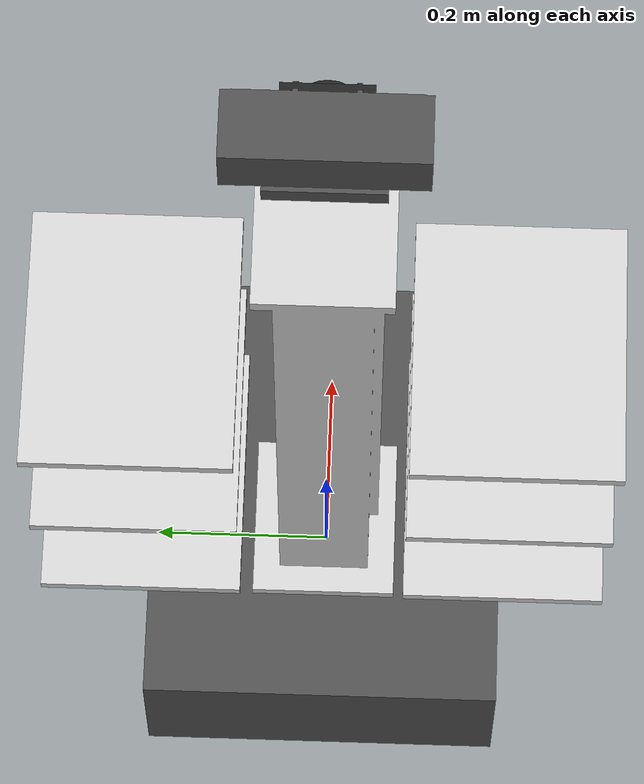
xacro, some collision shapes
<?xml version="1.0"?>

<robot name="delivery_robot" xmlns:xacro="http://www.ros.org/wiki/xacro">

  <!--
       1. EXTERNAL MACRO FILES
        -->
  <xacro:include filename="materials.xacro"/>
  <xacro:include filename="inertia_macros.xacro"/>
  <xacro:include filename="../gazebo/gazebo_plugins.xacro"/>

  <!-- ── Chassis ── -->
  <xacro:property name="chassis_length"       value="0.500"/>   <!-- m, front-back -->
  <xacro:property name="chassis_width"        value="0.400"/>   <!-- m, left-right  -->
  <xacro:property name="chassis_height"       value="0.180"/>
  <xacro:property name="chassis_mass"         value="18.0"/>    <!-- kg             -->

  <!-- ── Body Column ── -->
  <xacro:property name="body_length"          value="0.120"/>
  <xacro:property name="body_width"           value="0.100"/>
  <xacro:property name="body_height"          value="0.820"/>
  <xacro:property name="body_mass"            value="6.0"/>
  <!-- Z offset: bottom of body column sits on top of chassis -->
  <xacro:property name="body_z_offset"        value="${chassis_height / 2.0 + body_height / 2.0}"/>

  <!-- ── Drive Wheels (front pair) ── -->
  <xacro:property name="wheel_radius"         value="0.080"/>
  <xacro:property name="wheel_width"          value="0.055"/>
  <xacro:property name="wheel_mass"           value="1.20"/>    <!-- kg             -->
  <xacro:property name="wheel_x_offset"       value="0.140"/>   <!-- from base_link -->
  <xacro:property name="wheel_y_offset"       value="0.230"/>   <!-- half-track     -->
  <!-- Wheel centre sits at wheel_radius above ground; base_link is at that height -->
  <xacro:property name="wheel_z_offset"       value="0.0"/>

  <!-- ── Caster Wheels (rear passive pair) ── -->
  <xacro:property name="caster_radius"        value="0.045"/>
  <xacro:property name="caster_width"         value="0.035"/>
  <xacro:property name="caster_mass"          value="0.30"/>
  <xacro:property name="caster_x_offset"      value="-0.175"/>
  <xacro:property name="caster_y_offset"      value="0.140"/>
  <xacro:property name="caster_z_offset"      value="${-(wheel_radius - caster_radius)}"/>

  <!-- ── Shelves (3 trays, left+right symmetric around body column) ── -->
  <xacro:property name="shelf_length"         value="0.280"/>
  <xacro:property name="shelf_width"          value="0.220"/>
  <xacro:property name="shelf_thickness"      value="0.012"/>
  <xacro:property name="shelf_mass"           value="0.50"/>
  <!-- Shelf Z positions measured from base_link (ground reference) -->
  <xacro:property name="shelf1_z"             value="0.620"/>   <!-- top shelf      -->
  <xacro:property name="shelf2_z"             value="0.430"/>   <!-- middle shelf   -->
  <xacro:property name="shelf3_z"             value="0.240"/>   <!-- lower shelf    -->
  <xacro:property name="shelf_x_side"         value="0.200"/>   <!-- arm reach      -->

  <!-- ── Display / Head ── -->
  <xacro:property name="head_length"          value="0.070"/>   <!-- depth          -->
  <xacro:property name="head_width"           value="0.200"/>   <!-- drawing: 20    -->
  <xacro:property name="head_height"          value="0.060"/>   <!-- drawing: 6     -->
  <xacro:property name="head_mass"            value="0.80"/>
  <xacro:property name="head_z"               value="1.080"/>   <!-- from base_link -->

  <!-- ── LiDAR (upper body, ~840 mm from ground) ── -->
  <xacro:property name="lidar_z_from_body"    value="0.520"/>   <!-- rel. body_link -->
  <xacro:property name="lidar_mass"           value="0.200"/>

  <!-- ── Depth Camera (on head) ── -->
  <xacro:property name="camera_z_from_head"   value="0.010"/>
  <xacro:property name="camera_mass"          value="0.082"/>

  <!-- ── IMU (inside chassis, geometric centre) ── -->
  <xacro:property name="imu_mass"             value="0.015"/>

  <!-- ── Mechanical / Simulation ── -->
  <xacro:property name="wheel_friction"       value="1.2"/>
  <xacro:property name="wheel_damping"        value="0.05"/>
  <xacro:property name="wheel_effort_limit"   value="25.0"/>    <!-- Nm             -->
  <xacro:property name="wheel_vel_limit"      value="10.0"/>    <!-- rad/s          -->
  <xacro:property name="M_PI"                 value="3.14159265358979"/>

  <!--
       3. BASE FOOTPRINT  (REP-105: projects base_link onto floor, z = 0)
        -->
  <link name="base_footprint"/>

  <joint name="base_footprint_joint" type="fixed">
    <parent link="base_footprint"/>
    <child  link="base_link"/>
    <!-- base_link is elevated by wheel_radius so wheels just touch z=0 -->
    <origin xyz="0 0 ${wheel_radius}" rpy="0 0 0"/>
  </joint>

  <!--
       4. BASE LINK  (REP-105: origin at drive-axle centre)
        -->
  <link name="base_link">
    <visual>
      <origin xyz="0 0 0" rpy="0 0 0"/>
      <geometry>
        <mesh filename="package://robot_description_pkg/meshes/chassis.stl" scale="1 1 1"/>
      </geometry>
      <material name="dark_grey"/>
    </visual>

    <collision>
      <origin xyz="0 0 0" rpy="0 0 0"/>
      <geometry>
        <!-- Conservative box collision for chassis -->
        <box size="${chassis_length} ${chassis_width} ${chassis_height}"/>
      </geometry>
    </collision>

    <inertial>
      <!-- Solid box inertia, mass concentrated low for stability -->
      <origin xyz="0 0 0" rpy="0 0 0"/>
      <mass value="${chassis_mass}"/>
      <xacro:box_inertia
        m="${chassis_mass}"
        x="${chassis_length}"
        y="${chassis_width}"
        z="${chassis_height}"/>
    </inertial>
  </link>

  <!--
       5. DRIVE WHEELS  (continuous joints, left/right symmetric)
        -->

  <!-- ── LEFT DRIVE WHEEL ── -->
  <link name="left_wheel_link">
    <visual>
      <origin xyz="0 0 0" rpy="0 0 0"/>
      <geometry>
        <mesh filename="package://robot_description_pkg/meshes/wheel.stl" scale="1 1 1"/>
      </geometry>
      <material name="almost_black"/>
    </visual>

    <collision>
      <origin xyz="0 0 0" rpy="${M_PI/2} 0 0"/>
      <geometry>
        <cylinder radius="${wheel_radius}" length="${wheel_width}"/>
      </geometry>
    </collision>

    <inertial>
      <origin xyz="0 0 0" rpy="${M_PI/2} 0 0"/>
      <mass value="${wheel_mass}"/>
      <xacro:cylinder_inertia
        m="${wheel_mass}"
        r="${wheel_radius}"
        h="${wheel_width}"/>
    </inertial>
  </link>

  <joint name="left_wheel_joint" type="continuous">
    <parent link="base_link"/>
    <child  link="left_wheel_link"/>
    <origin xyz="${wheel_x_offset} ${wheel_y_offset} ${wheel_z_offset}" rpy="0 0 0"/>
    <axis   xyz="0 1 0"/>
    <dynamics damping="${wheel_damping}" friction="0.0"/>
    <limit effort="${wheel_effort_limit}" velocity="${wheel_vel_limit}"/>
  </joint>

  <!-- ── RIGHT DRIVE WHEEL ── -->
  <link name="right_wheel_link">
    <visual>
      <origin xyz="0 0 0" rpy="0 0 0"/>
      <geometry>
        <mesh filename="package://robot_description_pkg/meshes/wheel.stl" scale="1 1 1"/>
      </geometry>
      <material name="almost_black"/>
    </visual>

    <collision>
      <origin xyz="0 0 0" rpy="${M_PI/2} 0 0"/>
      <geometry>
        <cylinder radius="${wheel_radius}" length="${wheel_width}"/>
      </geometry>
    </collision>

    <inertial>
      <origin xyz="0 0 0" rpy="${M_PI/2} 0 0"/>
      <mass value="${wheel_mass}"/>
      <xacro:cylinder_inertia
        m="${wheel_mass}"
        r="${wheel_radius}"
        h="${wheel_width}"/>
    </inertial>
  </link>

  <joint name="right_wheel_joint" type="continuous">
    <parent link="base_link"/>
    <child  link="right_wheel_link"/>
    <origin xyz="${wheel_x_offset} ${-wheel_y_offset} ${wheel_z_offset}" rpy="0 0 0"/>
    <axis   xyz="0 1 0"/>
    <dynamics damping="${wheel_damping}" friction="0.0"/>
    <limit effort="${wheel_effort_limit}" velocity="${wheel_vel_limit}"/>
  </joint>

  <!--
       6. PASSIVE CASTER WHEELS  (rear pair, fixed yaw, no actuation)
        -->

  <!-- ── LEFT REAR CASTER ── -->
  <link name="left_caster_link">
    <visual>
      <origin xyz="0 0 0" rpy="0 0 0"/>
      <geometry>
        <sphere radius="${caster_radius}"/>
      </geometry>
      <material name="mid_grey"/>
    </visual>
    <collision>
      <origin xyz="0 0 0" rpy="0 0 0"/>
      <geometry>
        <sphere radius="${caster_radius}"/>
      </geometry>
    </collision>
    <inertial>
      <origin xyz="0 0 0" rpy="0 0 0"/>
      <mass value="${caster_mass}"/>
      <xacro:sphere_inertia m="${caster_mass}" r="${caster_radius}"/>
    </inertial>
  </link>

  <joint name="left_caster_joint" type="fixed">
    <parent link="base_link"/>
    <child  link="left_caster_link"/>
    <origin xyz="${caster_x_offset} ${caster_y_offset} ${caster_z_offset}" rpy="0 0 0"/>
  </joint>

  <!-- ── RIGHT REAR CASTER ── -->
  <link name="right_caster_link">
    <visual>
      <origin xyz="0 0 0" rpy="0 0 0"/>
      <geometry>
        <sphere radius="${caster_radius}"/>
      </geometry>
      <material name="mid_grey"/>
    </visual>
    <collision>
      <origin xyz="0 0 0" rpy="0 0 0"/>
      <geometry>
        <sphere radius="${caster_radius}"/>
      </geometry>
    </collision>
    <inertial>
      <origin xyz="0 0 0" rpy="0 0 0"/>
      <mass value="${caster_mass}"/>
      <xacro:sphere_inertia m="${caster_mass}" r="${caster_radius}"/>
    </inertial>
  </link>

  <joint name="right_caster_joint" type="fixed">
    <parent link="base_link"/>
    <child  link="right_caster_link"/>
    <origin xyz="${caster_x_offset} ${-caster_y_offset} ${caster_z_offset}" rpy="0 0 0"/>
  </joint>

  <!--
       7. BODY COLUMN  (structural vertical spine of the robot)
        -->
  <link name="body_link">
    <visual>
      <origin xyz="0 0 0" rpy="0 0 0"/>
      <geometry>
        <mesh filename="package://robot_description_pkg/meshes/body_column.stl" scale="1 1 1"/>
      </geometry>
      <material name="light_grey"/>
    </visual>
    <collision>
      <origin xyz="0 0 0" rpy="0 0 0"/>
      <geometry>
        <box size="${body_length} ${body_width} ${body_height}"/>
      </geometry>
    </collision>
    <inertial>
      <origin xyz="0 0 0" rpy="0 0 0"/>
      <mass value="${body_mass}"/>
      <xacro:box_inertia
        m="${body_mass}"
        x="${body_length}"
        y="${body_width}"
        z="${body_height}"/>
    </inertial>
  </link>

  <joint name="body_joint" type="fixed">
    <parent link="base_link"/>
    <child  link="body_link"/>
    <!--
      body_link origin is at the geometric centre of the column.
      body_z_offset = chassis_height/2 + body_height/2
    -->
    <origin xyz="-0.040 0 ${body_z_offset}" rpy="0 0 0"/>
  </joint>

  <!--
       8. SHELVES  (3 trays, left & right, child of body_link)
       Naming: shelfN_{left|right}_link
       Z positions are relative to base_link via body_link chain.
        -->

  <!-- ─── Shelf 1 LEFT (top) ─── -->
  <link name="shelf1_left_link">
    <visual>
      <origin xyz="0 0 0" rpy="0 0 0"/>
      <geometry>
        <box size="${shelf_length} ${shelf_width} ${shelf_thickness}"/>
      </geometry>
      <material name="light_grey"/>
    </visual>
    <collision>
      <origin xyz="0 0 0" rpy="0 0 0"/>
      <geometry>
        <box size="${shelf_length} ${shelf_width} ${shelf_thickness}"/>
      </geometry>
    </collision>
    <inertial>
      <origin xyz="0 0 0" rpy="0 0 0"/>
      <mass value="${shelf_mass}"/>
      <xacro:box_inertia
        m="${shelf_mass}"
        x="${shelf_length}"
        y="${shelf_width}"
        z="${shelf_thickness}"/>
    </inertial>
  </link>

  <joint name="shelf1_left_joint" type="fixed">
    <parent link="body_link"/>
    <child  link="shelf1_left_link"/>
    <origin xyz="0 ${shelf_x_side} ${shelf1_z - body_z_offset}" rpy="0 0 0"/>
  </joint>

  <!-- ─── Shelf 1 RIGHT (top) ─── -->
  <link name="shelf1_right_link">
    <visual>
      <origin xyz="0 0 0" rpy="0 0 0"/>
      <geometry>
        <box size="${shelf_length} ${shelf_width} ${shelf_thickness}"/>
      </geometry>
      <material name="light_grey"/>
    </visual>
    <collision>
      <origin xyz="0 0 0" rpy="0 0 0"/>
      <geometry>
        <box size="${shelf_length} ${shelf_width} ${shelf_thickness}"/>
      </geometry>
    </collision>
    <inertial>
      <origin xyz="0 0 0" rpy="0 0 0"/>
      <mass value="${shelf_mass}"/>
      <xacro:box_inertia
        m="${shelf_mass}"
        x="${shelf_length}"
        y="${shelf_width}"
        z="${shelf_thickness}"/>
    </inertial>
  </link>

  <joint name="shelf1_right_joint" type="fixed">
    <parent link="body_link"/>
    <child  link="shelf1_right_link"/>
    <origin xyz="0 ${-shelf_x_side} ${shelf1_z - body_z_offset}" rpy="0 0 0"/>
  </joint>

  <!-- ─── Shelf 2 LEFT (middle) ─── -->
  <link name="shelf2_left_link">
    <visual>
      <origin xyz="0 0 0" rpy="0 0 0"/>
      <geometry>
        <box size="${shelf_length} ${shelf_width} ${shelf_thickness}"/>
      </geometry>
      <material name="light_grey"/>
    </visual>
    <collision>
      <origin xyz="0 0 0" rpy="0 0 0"/>
      <geometry>
        <box size="${shelf_length} ${shelf_width} ${shelf_thickness}"/>
      </geometry>
    </collision>
    <inertial>
      <origin xyz="0 0 0" rpy="0 0 0"/>
      <mass value="${shelf_mass}"/>
      <xacro:box_inertia
        m="${shelf_mass}"
        x="${shelf_length}"
        y="${shelf_width}"
        z="${shelf_thickness}"/>
    </inertial>
  </link>

  <joint name="shelf2_left_joint" type="fixed">
    <parent link="body_link"/>
    <child  link="shelf2_left_link"/>
    <origin xyz="0 ${shelf_x_side} ${shelf2_z - body_z_offset}" rpy="0 0 0"/>
  </joint>

  <!-- ─── Shelf 2 RIGHT (middle) ─── -->
  <link name="shelf2_right_link">
    <visual>
      <origin xyz="0 0 0" rpy="0 0 0"/>
      <geometry>
        <box size="${shelf_length} ${shelf_width} ${shelf_thickness}"/>
      </geometry>
      <material name="light_grey"/>
    </visual>
    <collision>
      <origin xyz="0 0 0" rpy="0 0 0"/>
      <geometry>
        <box size="${shelf_length} ${shelf_width} ${shelf_thickness}"/>
      </geometry>
    </collision>
    <inertial>
      <origin xyz="0 0 0" rpy="0 0 0"/>
      <mass value="${shelf_mass}"/>
      <xacro:box_inertia
        m="${shelf_mass}"
        x="${shelf_length}"
        y="${shelf_width}"
        z="${shelf_thickness}"/>
    </inertial>
  </link>

  <joint name="shelf2_right_joint" type="fixed">
    <parent link="body_link"/>
    <child  link="shelf2_right_link"/>
    <origin xyz="0 ${-shelf_x_side} ${shelf2_z - body_z_offset}" rpy="0 0 0"/>
  </joint>

  <!-- ─── Shelf 3 LEFT (lower) ─── -->
  <link name="shelf3_left_link">
    <visual>
      <origin xyz="0 0 0" rpy="0 0 0"/>
      <geometry>
        <box size="${shelf_length} ${shelf_width} ${shelf_thickness}"/>
      </geometry>
      <material name="light_grey"/>
    </visual>
    <collision>
      <origin xyz="0 0 0" rpy="0 0 0"/>
      <geometry>
        <box size="${shelf_length} ${shelf_width} ${shelf_thickness}"/>
      </geometry>
    </collision>
    <inertial>
      <origin xyz="0 0 0" rpy="0 0 0"/>
      <mass value="${shelf_mass}"/>
      <xacro:box_inertia
        m="${shelf_mass}"
        x="${shelf_length}"
        y="${shelf_width}"
        z="${shelf_thickness}"/>
    </inertial>
  </link>

  <joint name="shelf3_left_joint" type="fixed">
    <parent link="body_link"/>
    <child  link="shelf3_left_link"/>
    <origin xyz="0 ${shelf_x_side} ${shelf3_z - body_z_offset}" rpy="0 0 0"/>
  </joint>

  <!-- ─── Shelf 3 RIGHT (lower) ─── -->
  <link name="shelf3_right_link">
    <visual>
      <origin xyz="0 0 0" rpy="0 0 0"/>
      <geometry>
        <box size="${shelf_length} ${shelf_width} ${shelf_thickness}"/>
      </geometry>
      <material name="light_grey"/>
    </visual>
    <collision>
      <origin xyz="0 0 0" rpy="0 0 0"/>
      <geometry>
        <box size="${shelf_length} ${shelf_width} ${shelf_thickness}"/>
      </geometry>
    </collision>
    <inertial>
      <origin xyz="0 0 0" rpy="0 0 0"/>
      <mass value="${shelf_mass}"/>
      <xacro:box_inertia
        m="${shelf_mass}"
        x="${shelf_length}"
        y="${shelf_width}"
        z="${shelf_thickness}"/>
    </inertial>
  </link>

  <joint name="shelf3_right_joint" type="fixed">
    <parent link="body_link"/>
    <child  link="shelf3_right_link"/>
    <origin xyz="0 ${-shelf_x_side} ${shelf3_z - body_z_offset}" rpy="0 0 0"/>
  </joint>

  <!--
       9. HEAD / DISPLAY UNIT  (child of body_link, top of column)
        -->
  <link name="head_link">
    <visual>
      <origin xyz="0 0 0" rpy="0 0 0"/>
      <geometry>
        <mesh filename="package://robot_description_pkg/meshes/head.stl" scale="1 1 1"/>
      </geometry>
      <material name="dark_grey"/>
    </visual>
    <collision>
      <origin xyz="0 0 0" rpy="0 0 0"/>
      <geometry>
        <box size="${head_length} ${head_width} ${head_height}"/>
      </geometry>
    </collision>
    <inertial>
      <origin xyz="0 0 0" rpy="0 0 0"/>
      <mass value="${head_mass}"/>
      <xacro:box_inertia
        m="${head_mass}"
        x="${head_length}"
        y="${head_width}"
        z="${head_height}"/>
    </inertial>
  </link>

  <joint name="head_joint" type="fixed">
    <parent link="body_link"/>
    <child  link="head_link"/>
    <!--
      head_z (abs) = 1.080 m
      origin relative to body_link: head_z - body_z_offset
    -->
    <origin xyz="0.020 0 ${head_z - body_z_offset}" rpy="0 0 0"/>
  </joint>

  <!--
       10. SENSOR FRAMES
       All sensor origins are zero-volume, massless frames.
       Physical sensor mass is lumped into the parent structural link.
        -->

  <!--
       10.1  2D LiDAR  (upper body column, ~840 mm)
              Parent: body_link
              Convention: x-forward, y-left, z-up (REP-103)
        -->
  <link name="lidar_link">
    <visual>
      <origin xyz="0 0 0" rpy="0 0 0"/>
      <geometry>
        <!-- Representative puck geometry for visualisation only -->
        <cylinder radius="0.037" length="0.038"/>
      </geometry>
      <material name="almost_black"/>
    </visual>
    <collision>
      <origin xyz="0 0 0" rpy="0 0 0"/>
      <geometry>
        <cylinder radius="0.037" length="0.038"/>
      </geometry>
    </collision>
    <inertial>
      <origin xyz="0 0 0" rpy="0 0 0"/>
      <mass value="${lidar_mass}"/>
      <xacro:cylinder_inertia
        m="${lidar_mass}"
        r="0.037"
        h="0.038"/>
    </inertial>
  </link>

  <joint name="lidar_joint" type="fixed">
    <parent link="body_link"/>
    <child  link="lidar_link"/>
    <!--
      lidar_z_from_body = 0.520 m above body_link origin
      Lidar is front-centre of the column, x slightly forward.
      No rotation needed: puck top is +z, scan plane is XY.
    -->
    <origin xyz="0.065 0 ${lidar_z_from_body}" rpy="0 0 0"/>
  </joint>

  <!--
       10.2  Depth Camera  (on head display face)
              Parent: head_link
              Convention: x-forward, y-left, z-up
              Optical frame added separately (below).
        -->
  <link name="camera_link">
    <visual>
      <origin xyz="0 0 0" rpy="0 0 0"/>
      <geometry>
        <box size="0.025 0.090 0.025"/>
      </geometry>
      <material name="almost_black"/>
    </visual>
    <collision>
      <origin xyz="0 0 0" rpy="0 0 0"/>
      <geometry>
        <box size="0.025 0.090 0.025"/>
      </geometry>
    </collision>
    <inertial>
      <origin xyz="0 0 0" rpy="0 0 0"/>
      <mass value="${camera_mass}"/>
      <xacro:box_inertia
        m="${camera_mass}"
        x="0.025" y="0.090" z="0.025"/>
    </inertial>
  </link>

  <joint name="camera_joint" type="fixed">
    <parent link="head_link"/>
    <child  link="camera_link"/>
    <!--
      Camera sits on the front face of the head, centred vertically.
      x = head_length/2 (flush with front face)
    -->
    <origin xyz="${head_length / 2.0} 0 ${camera_z_from_head}" rpy="0 0 0"/>
  </joint>

  <!--
    Camera Optical Frame  (ROS image convention)
    REP-103: camera_optical_link has z-forward, x-right, y-down
    Required by image_transport / rviz / cv_bridge pipelines.
  -->
  <link name="camera_optical_link"/>

  <joint name="camera_optical_joint" type="fixed">
    <parent link="camera_link"/>
    <child  link="camera_optical_link"/>
    <!-- Rotate from ROS body frame to optical frame -->
    <origin xyz="0 0 0" rpy="${-M_PI/2} 0 ${-M_PI/2}"/>
  </joint>

  <!--
       10.3  IMU  (chassis centre, close to CoM)
              Parent: base_link
              Convention: x-forward, y-left, z-up
        -->
  <link name="imu_link">
    <visual>
      <origin xyz="0 0 0" rpy="0 0 0"/>
      <geometry>
        <box size="0.020 0.020 0.004"/>
      </geometry>
      <material name="green"/>
    </visual>
    <inertial>
      <origin xyz="0 0 0" rpy="0 0 0"/>
      <mass value="${imu_mass}"/>
      <xacro:box_inertia
        m="${imu_mass}"
        x="0.020" y="0.020" z="0.004"/>
    </inertial>
  </link>

  <joint name="imu_joint" type="fixed">
    <parent link="base_link"/>
    <child  link="imu_link"/>
    <!--
      Positioned at the geometric centre of the chassis, midway in Z.
      Aligned with base_link orientation (no rotation offset).
    -->
    <origin xyz="0 0 0" rpy="0 0 0"/>
  </joint>

  <!--
       11. GAZEBO REFERENCE OVERRIDES
       Friction, mu values and surface properties for physics engine.
       Plugin tags are in gazebo/gazebo_plugins.xacro.
        -->

  <gazebo reference="base_link">
    <material>Gazebo/DarkGrey</material>
    <turnGravityOff>false</turnGravityOff>
  </gazebo>

  <gazebo reference="left_wheel_link">
    <mu1 value="${wheel_friction}"/>
    <mu2 value="${wheel_friction}"/>
    <kp  value="1e6"/>
    <kd  value="1.0"/>
    <fdir1 value="1 0 0"/>
    <material>Gazebo/Black</material>
    <minDepth>0.001</minDepth>
    <maxVel>1.0</maxVel>
  </gazebo>

  <gazebo reference="right_wheel_link">
    <mu1 value="${wheel_friction}"/>
    <mu2 value="${wheel_friction}"/>
    <kp  value="1e6"/>
    <kd  value="1.0"/>
    <fdir1 value="1 0 0"/>
    <material>Gazebo/Black</material>
    <minDepth>0.001</minDepth>
    <maxVel>1.0</maxVel>
  </gazebo>

  <gazebo reference="left_caster_link">
    <!-- Near-zero friction so caster rolls freely -->
    <mu1 value="0.001"/>
    <mu2 value="0.001"/>
    <kp  value="1e6"/>
    <kd  value="1.0"/>
    <material>Gazebo/Grey</material>
  </gazebo>

  <gazebo reference="right_caster_link">
    <mu1 value="0.001"/>
    <mu2 value="0.001"/>
    <kp  value="1e6"/>
    <kd  value="1.0"/>
    <material>Gazebo/Grey</material>
  </gazebo>

  <gazebo reference="lidar_link">
    <material>Gazebo/Black</material>
  </gazebo>

  <gazebo reference="camera_link">
    <material>Gazebo/Black</material>
  </gazebo>

  <gazebo reference="body_link">
    <material>Gazebo/White</material>
  </gazebo>

  <gazebo reference="head_link">
    <material>Gazebo/DarkGrey</material>
  </gazebo>

</robot>

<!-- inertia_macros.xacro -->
<robot xmlns:xacro="http://www.ros.org/wiki/xacro">

  <xacro:macro name="box_inertia" params="m x y z">
    <inertia
      ixx="${m / 12.0 * (y*y + z*z)}"
      ixy="0.0"
      ixz="0.0"
      iyy="${m / 12.0 * (x*x + z*z)}"
      iyz="0.0"
      izz="${m / 12.0 * (x*x + y*y)}"/>
  </xacro:macro>

  <xacro:macro name="cylinder_inertia" params="m r h">
    <inertia
      ixx="${m / 12.0 * (3.0*r*r + h*h)}"
      ixy="0.0"
      ixz="0.0"
      iyy="${m / 12.0 * (3.0*r*r + h*h)}"
      iyz="0.0"
      izz="${m / 2.0  * r*r}"/>
  </xacro:macro>

  <xacro:macro name="sphere_inertia" params="m r">
    <inertia
      ixx="${2.0 / 5.0 * m * r*r}"
      ixy="0.0"
      ixz="0.0"
      iyy="${2.0 / 5.0 * m * r*r}"
      iyz="0.0"
      izz="${2.0 / 5.0 * m * r*r}"/>
  </xacro:macro>

  <xacro:macro name="hollow_cylinder_inertia" params="m r_o r_i h">
    <inertia
      ixx="${m / 12.0 * (3.0*(r_o*r_o + r_i*r_i) + h*h)}"
      ixy="0.0"
      ixz="0.0"
      iyy="${m / 12.0 * (3.0*(r_o*r_o + r_i*r_i) + h*h)}"
      iyz="0.0"
      izz="${m / 2.0  * (r_o*r_o + r_i*r_i)}"/>
  </xacro:macro>

</robot>
